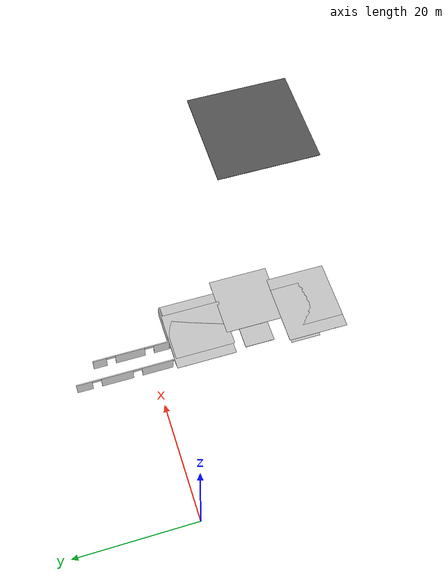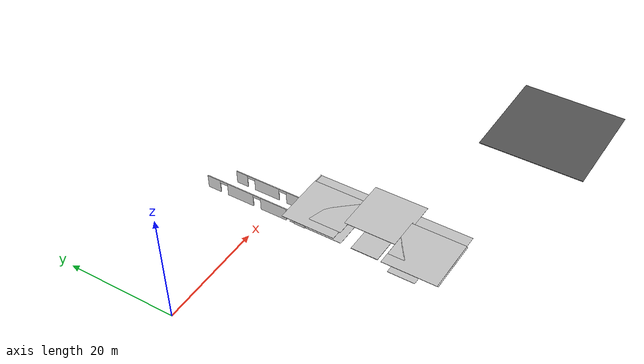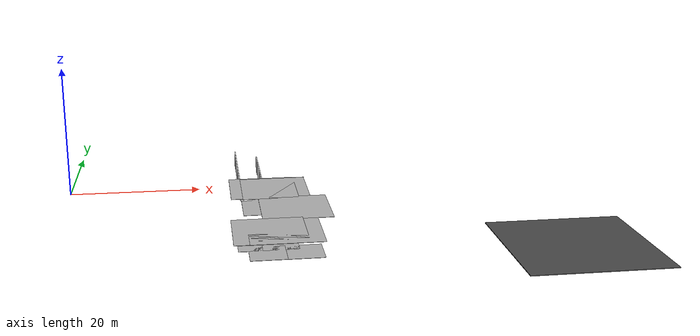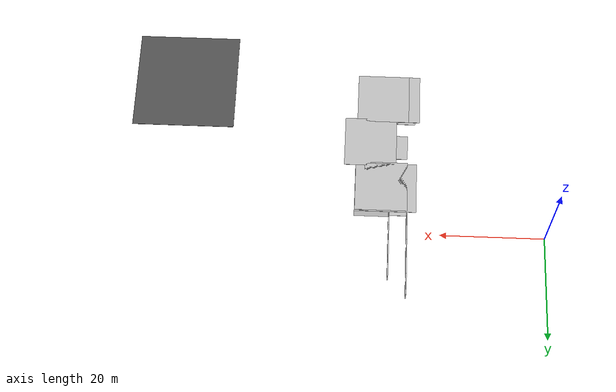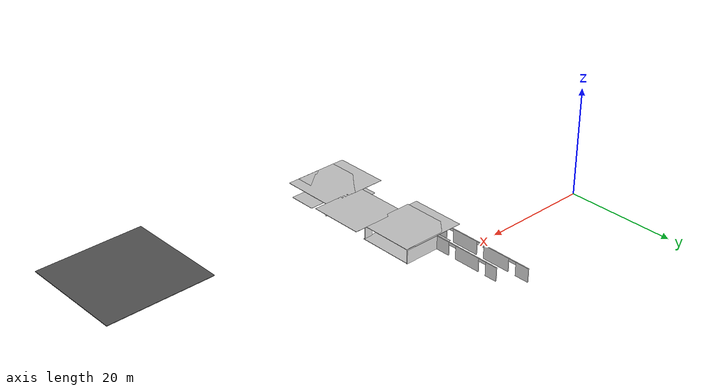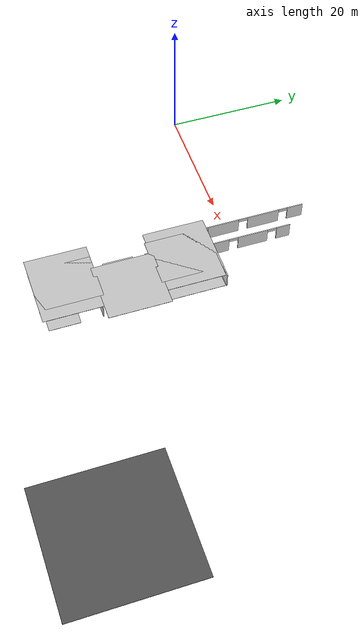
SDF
<sdf version="1.6">
 <world name="default">
  <model name="mainoffice">
   <pose>42.7555 15.4488 0 0 -0 0</pose>
   <link name="Wall_33">
    <pose>-11.4991 -33.925 0 0 -0 1.5708</pose>
    <visual name="Wall_33_Visual_0">
     <pose>-2.68364 0 1.25 0 -0 0</pose>
     <geometry><box><size>4.38272 0.15 2.5</size></box></geometry>
     <material>
      <script>
       <uri>model://office_env/materials/scripts</uri>
       <uri>model://office_env/materials/textures</uri>
       <name>wall</name>
      </script>
      <ambient>1 1 1 1</ambient>
     </material>
    </visual>
    <collision name="Wall_33_Collision_0">
     <geometry><box><size>4.38272 0.15 2.5</size></box></geometry>
     <pose>-2.68364 0 1.25 0 -0 0</pose>
    </collision>
    <visual name="Wall_33_Visual_1">
     <pose>2.94136 0 1.25 0 -0 0</pose>
     <geometry><box><size>3.86728 0.15 2.5</size></box></geometry>
     <material>
      <script>
       <uri>model://office_env/materials/scripts</uri>
       <uri>model://office_env/materials/textures</uri>
       <name>wall</name>
      </script>
      <ambient>1 1 1 1</ambient>
     </material>
    </visual>
    <collision name="Wall_33_Collision_1">
     <geometry><box><size>3.86728 0.15 2.5</size></box></geometry>
     <pose>2.94136 0 1.25 0 -0 0</pose>
    </collision>
    <visual name="Wall_33_Visual_2">
     <pose>0.257717 0 2.25 0 -0 0</pose>
     <geometry><box><size>1.5 0.15 0.5</size></box></geometry>
     <material>
      <script>
       <uri>model://office_env/materials/scripts</uri>
       <uri>model://office_env/materials/textures</uri>
       <name>wall</name>
      </script>
      <ambient>1 1 1 1</ambient>
     </material>
    </visual>
    <collision name="Wall_33_Collision_2">
     <geometry><box><size>1.5 0.15 0.5</size></box></geometry>
     <pose>0.257717 0 2.25 0 -0 0</pose>
    </collision>
   </link>
   <link name="Wall_53">
    <pose>-9.07409 -38.725 0 0 -0 0</pose>
    <visual name="Wall_53_Visual_0">
     <pose>-1.62716 0 1.25 0 -0 0</pose>
     <geometry><box><size>1.74568 0.15 2.5</size></box></geometry>
     <material>
      <script>
       <uri>model://office_env/materials/scripts</uri>
       <uri>model://office_env/materials/textures</uri>
       <name>wall</name>
      </script>
      <ambient>1 1 1 1</ambient>
     </material>
    </visual>
    <collision name="Wall_53_Collision_0">
     <geometry><box><size>1.74568 0.15 2.5</size></box></geometry>
     <pose>-1.62716 0 1.25 0 -0 0</pose>
    </collision>
    <visual name="Wall_53_Visual_1">
     <pose>1.62284 0 1.25 0 -0 0</pose>
     <geometry><box><size>1.75432 0.15 2.5</size></box></geometry>
     <material>
      <script>
       <uri>model://office_env/materials/scripts</uri>
       <uri>model://office_env/materials/textures</uri>
       <name>wall</name>
      </script>
      <ambient>1 1 1 1</ambient>
     </material>
    </visual>
    <collision name="Wall_53_Collision_1">
     <geometry><box><size>1.75432 0.15 2.5</size></box></geometry>
     <pose>1.62284 0 1.25 0 -0 0</pose>
    </collision>
    <visual name="Wall_53_Visual_2">
     <pose>-0.00432 0 2.25 0 -0 0</pose>
     <geometry><box><size>1.5 0.15 0.5</size></box></geometry>
     <material>
      <script>
       <uri>model://office_env/materials/scripts</uri>
       <uri>model://office_env/materials/textures</uri>
       <name>wall</name>
      </script>
      <ambient>1 1 1 1</ambient>
     </material>
    </visual>
    <collision name="Wall_53_Collision_2">
     <geometry><box><size>1.5 0.15 0.5</size></box></geometry>
     <pose>-0.00432 0 2.25 0 -0 0</pose>
    </collision>
   </link>
   <link name="Wall_56">
    <pose>-9.07409 -29.125 0 0 -0 0</pose>
    <visual name="Wall_56_Visual_0">
     <pose>-1.53426 0 1.25 0 -0 0</pose>
     <geometry><box><size>1.93148 0.15 2.5</size></box></geometry>
     <material>
      <script>
       <uri>model://office_env/materials/scripts</uri>
       <uri>model://office_env/materials/textures</uri>
       <name>wall</name>
      </script>
      <ambient>1 1 1 1</ambient>
     </material>
    </visual>
    <collision name="Wall_56_Collision_0">
     <geometry><box><size>1.93148 0.15 2.5</size></box></geometry>
     <pose>-1.53426 0 1.25 0 -0 0</pose>
    </collision>
    <visual name="Wall_56_Visual_1">
     <pose>1.71574 0 1.25 0 -0 0</pose>
     <geometry><box><size>1.56852 0.15 2.5</size></box></geometry>
     <material>
      <script>
       <uri>model://office_env/materials/scripts</uri>
       <uri>model://office_env/materials/textures</uri>
       <name>wall</name>
      </script>
      <ambient>1 1 1 1</ambient>
     </material>
    </visual>
    <collision name="Wall_56_Collision_1">
     <geometry><box><size>1.56852 0.15 2.5</size></box></geometry>
     <pose>1.71574 0 1.25 0 -0 0</pose>
    </collision>
    <visual name="Wall_56_Visual_2">
     <pose>0.181485 0 2.25 0 -0 0</pose>
     <geometry><box><size>1.5 0.15 0.5</size></box></geometry>
     <material>
      <script>
       <uri>model://office_env/materials/scripts</uri>
       <uri>model://office_env/materials/textures</uri>
       <name>wall</name>
      </script>
      <ambient>1 1 1 1</ambient>
     </material>
    </visual>
    <collision name="Wall_56_Collision_2">
     <geometry><box><size>1.5 0.15 0.5</size></box></geometry>
     <pose>0.181485 0 2.25 0 -0 0</pose>
    </collision>
   </link>
   <link name="Wall_59">
    <collision name="Wall_59_Collision">
     <geometry><box><size>7 0.15 2.5</size></box></geometry>
     <pose>0 0 1.25 0 -0 0</pose>
    </collision>
    <visual name="Wall_59_Visual">
     <pose>0 0 1.25 0 -0 0</pose>
     <geometry><box><size>7 0.15 2.5</size></box></geometry>
     <material>
      <script>
       <uri>model://office_env/materials/scripts</uri>
       <uri>model://office_env/materials/textures</uri>
       <name>wall</name>
      </script>
      <ambient>1 1 1 1</ambient>
     </material>
    </visual>
    <pose>-11.4991 -25.7 0 0 -0 1.5708</pose>
   </link>
   <link name="Wall_60">
    <pose>-13.7991 -22.275 0 0 -0 3.14159</pose>
    <visual name="Wall_60_Visual_0">
     <pose>-1.46064 0 1.25 0 -0 0</pose>
     <geometry><box><size>1.82871 0.15 2.5</size></box></geometry>
     <material>
      <script>
       <uri>model://office_env/materials/scripts</uri>
       <uri>model://office_env/materials/textures</uri>
       <name>wall</name>
      </script>
      <ambient>1 1 1 1</ambient>
     </material>
    </visual>
    <collision name="Wall_60_Collision_0">
     <geometry><box><size>1.82871 0.15 2.5</size></box></geometry>
     <pose>-1.46064 0 1.25 0 -0 0</pose>
    </collision>
    <visual name="Wall_60_Visual_1">
     <pose>1.66436 0 1.25 0 -0 0</pose>
     <geometry><box><size>1.42129 0.15 2.5</size></box></geometry>
     <material>
      <script>
       <uri>model://office_env/materials/scripts</uri>
       <uri>model://office_env/materials/textures</uri>
       <name>wall</name>
      </script>
      <ambient>1 1 1 1</ambient>
     </material>
    </visual>
    <collision name="Wall_60_Collision_1">
     <geometry><box><size>1.42129 0.15 2.5</size></box></geometry>
     <pose>1.66436 0 1.25 0 -0 0</pose>
    </collision>
    <visual name="Wall_60_Visual_2">
     <pose>0.203711 0 2.25 0 -0 0</pose>
     <geometry><box><size>1.5 0.15 0.5</size></box></geometry>
     <material>
      <script>
       <uri>model://office_env/materials/scripts</uri>
       <uri>model://office_env/materials/textures</uri>
       <name>wall</name>
      </script>
      <ambient>1 1 1 1</ambient>
     </material>
    </visual>
    <collision name="Wall_60_Collision_2">
     <geometry><box><size>1.5 0.15 0.5</size></box></geometry>
     <pose>0.203711 0 2.25 0 -0 0</pose>
    </collision>
   </link>
   <link name="Wall_61">
    <collision name="Wall_61_Collision">
     <geometry><box><size>0.5 0.15 2.5</size></box></geometry>
     <pose>0 0 1.25 0 -0 0</pose>
    </collision>
    <visual name="Wall_61_Visual">
     <pose>0 0 1.25 0 -0 0</pose>
     <geometry><box><size>0.5 0.15 2.5</size></box></geometry>
     <material>
      <script>
       <uri>model://office_env/materials/scripts</uri>
       <uri>model://office_env/materials/textures</uri>
       <name>wall</name>
      </script>
      <ambient>1 1 1 1</ambient>
     </material>
    </visual>
    <pose>-16.2741 -22.275 0 0 -0 3.14159</pose>
   </link>
   <link name="Wall_62">
    <pose>-16.4491 -12.475 0 0 -0 1.5708</pose>
    <visual name="Wall_62_Visual_0">
     <pose>-8.77826 0 1.25 0 -0 0</pose>
     <geometry><box><size>2.19348 0.15 2.5</size></box></geometry>
     <material>
      <script>
       <uri>model://office_env/materials/scripts</uri>
       <uri>model://office_env/materials/textures</uri>
       <name>wall</name>
      </script>
      <ambient>1 1 1 1</ambient>
     </material>
    </visual>
    <collision name="Wall_62_Collision_0">
     <geometry><box><size>2.19348 0.15 2.5</size></box></geometry>
     <pose>-8.77826 0 1.25 0 -0 0</pose>
    </collision>
    <visual name="Wall_62_Visual_1">
     <pose>-3.59393 0 1.25 0 -0 0</pose>
     <geometry><box><size>5.17517 0.15 2.5</size></box></geometry>
     <material>
      <script>
       <uri>model://office_env/materials/scripts</uri>
       <uri>model://office_env/materials/textures</uri>
       <name>wall</name>
      </script>
      <ambient>1 1 1 1</ambient>
     </material>
    </visual>
    <collision name="Wall_62_Collision_1">
     <geometry><box><size>5.17517 0.15 2.5</size></box></geometry>
     <pose>-3.59393 0 1.25 0 -0 0</pose>
    </collision>
    <visual name="Wall_62_Visual_2">
     <pose>3.1331 0 1.25 0 -0 0</pose>
     <geometry><box><size>5.27889 0.15 2.5</size></box></geometry>
     <material>
      <script>
       <uri>model://office_env/materials/scripts</uri>
       <uri>model://office_env/materials/textures</uri>
       <name>wall</name>
      </script>
      <ambient>1 1 1 1</ambient>
     </material>
    </visual>
    <collision name="Wall_62_Collision_2">
     <geometry><box><size>5.27889 0.15 2.5</size></box></geometry>
     <pose>3.1331 0 1.25 0 -0 0</pose>
    </collision>
    <visual name="Wall_62_Visual_3">
     <pose>8.57377 0 1.25 0 -0 0</pose>
     <geometry><box><size>2.60246 0.15 2.5</size></box></geometry>
     <material>
      <script>
       <uri>model://office_env/materials/scripts</uri>
       <uri>model://office_env/materials/textures</uri>
       <name>wall</name>
      </script>
      <ambient>1 1 1 1</ambient>
     </material>
    </visual>
    <collision name="Wall_62_Collision_3">
     <geometry><box><size>2.60246 0.15 2.5</size></box></geometry>
     <pose>8.57377 0 1.25 0 -0 0</pose>
    </collision>
    <visual name="Wall_62_Visual_4">
     <pose>-6.93152 0 2.25 0 -0 0</pose>
     <geometry><box><size>1.5 0.15 0.5</size></box></geometry>
     <material>
      <script>
       <uri>model://office_env/materials/scripts</uri>
       <uri>model://office_env/materials/textures</uri>
       <name>wall</name>
      </script>
      <ambient>1 1 1 1</ambient>
     </material>
    </visual>
    <collision name="Wall_62_Collision_4">
     <geometry><box><size>1.5 0.15 0.5</size></box></geometry>
     <pose>-6.93152 0 2.25 0 -0 0</pose>
    </collision>
    <visual name="Wall_62_Visual_5">
     <pose>-0.256349 0 2.25 0 -0 0</pose>
     <geometry><box><size>1.5 0.15 0.5</size></box></geometry>
     <material>
      <script>
       <uri>model://office_env/materials/scripts</uri>
       <uri>model://office_env/materials/textures</uri>
       <name>wall</name>
      </script>
      <ambient>1 1 1 1</ambient>
     </material>
    </visual>
    <collision name="Wall_62_Collision_5">
     <geometry><box><size>1.5 0.15 0.5</size></box></geometry>
     <pose>-0.256349 0 2.25 0 -0 0</pose>
    </collision>
    <visual name="Wall_62_Visual_6">
     <pose>6.52254 0 2.25 0 -0 0</pose>
     <geometry><box><size>1.5 0.15 0.5</size></box></geometry>
     <material>
      <script>
       <uri>model://office_env/materials/scripts</uri>
       <uri>model://office_env/materials/textures</uri>
       <name>wall</name>
      </script>
      <ambient>1 1 1 1</ambient>
     </material>
    </visual>
    <collision name="Wall_62_Collision_6">
     <geometry><box><size>1.5 0.15 0.5</size></box></geometry>
     <pose>6.52254 0 2.25 0 -0 0</pose>
    </collision>
   </link>
   <link name="Wall_81">
    <collision name="Wall_81_Collision">
     <geometry><box><size>6.75 0.15 2.5</size></box></geometry>
     <pose>0 0 1.25 0 -0 0</pose>
    </collision>
    <visual name="Wall_81_Visual">
     <pose>0 0 1.25 0 -0 0</pose>
     <geometry><box><size>6.75 0.15 2.5</size></box></geometry>
     <material>
      <script>
       <uri>model://office_env/materials/scripts</uri>
       <uri>model://office_env/materials/textures</uri>
       <name>wall</name>
      </script>
      <ambient>1 1 1 1</ambient>
     </material>
    </visual>
    <pose>-9.72161 -19.0475 0 0 -0 3.14159</pose>
   </link>
   <link name="Wall_82">
    <pose>-13.0216 -12.6225 0 0 -0 1.5708</pose>
    <visual name="Wall_82_Visual_0">
     <pose>-5.11472 0 1.25 0 -0 0</pose>
     <geometry><box><size>2.77056 0.15 2.5</size></box></geometry>
     <material>
      <script>
       <uri>model://office_env/materials/scripts</uri>
       <uri>model://office_env/materials/textures</uri>
       <name>wall</name>
      </script>
      <ambient>1 1 1 1</ambient>
     </material>
    </visual>
    <collision name="Wall_82_Collision_0">
     <geometry><box><size>2.77056 0.15 2.5</size></box></geometry>
     <pose>-5.11472 0 1.25 0 -0 0</pose>
    </collision>
    <visual name="Wall_82_Visual_1">
     <pose>0.250774 0 1.25 0 -0 0</pose>
     <geometry><box><size>4.96043 0.15 2.5</size></box></geometry>
     <material>
      <script>
       <uri>model://office_env/materials/scripts</uri>
       <uri>model://office_env/materials/textures</uri>
       <name>wall</name>
      </script>
      <ambient>1 1 1 1</ambient>
     </material>
    </visual>
    <collision name="Wall_82_Collision_1">
     <geometry><box><size>4.96043 0.15 2.5</size></box></geometry>
     <pose>0.250774 0 1.25 0 -0 0</pose>
    </collision>
    <visual name="Wall_82_Visual_2">
     <pose>5.36549 0 1.25 0 -0 0</pose>
     <geometry><box><size>2.26901 0.15 2.5</size></box></geometry>
     <material>
      <script>
       <uri>model://office_env/materials/scripts</uri>
       <uri>model://office_env/materials/textures</uri>
       <name>wall</name>
      </script>
      <ambient>1 1 1 1</ambient>
     </material>
    </visual>
    <collision name="Wall_82_Collision_2">
     <geometry><box><size>2.26901 0.15 2.5</size></box></geometry>
     <pose>5.36549 0 1.25 0 -0 0</pose>
    </collision>
    <visual name="Wall_82_Visual_3">
     <pose>-2.97944 0 2.25 0 -0 0</pose>
     <geometry><box><size>1.5 0.15 0.5</size></box></geometry>
     <material>
      <script>
       <uri>model://office_env/materials/scripts</uri>
       <uri>model://office_env/materials/textures</uri>
       <name>wall</name>
      </script>
      <ambient>1 1 1 1</ambient>
     </material>
    </visual>
    <collision name="Wall_82_Collision_3">
     <geometry><box><size>1.5 0.15 0.5</size></box></geometry>
     <pose>-2.97944 0 2.25 0 -0 0</pose>
    </collision>
    <visual name="Wall_82_Visual_4">
     <pose>3.48099 0 2.25 0 -0 0</pose>
     <geometry><box><size>1.5 0.15 0.5</size></box></geometry>
     <material>
      <script>
       <uri>model://office_env/materials/scripts</uri>
       <uri>model://office_env/materials/textures</uri>
       <name>wall</name>
      </script>
      <ambient>1 1 1 1</ambient>
     </material>
    </visual>
    <collision name="Wall_82_Collision_4">
     <geometry><box><size>1.5 0.15 0.5</size></box></geometry>
     <pose>3.48099 0 2.25 0 -0 0</pose>
    </collision>
   </link>
   <static>1</static>
  </model>
  <model name="asphalt_plane">
   <static>1</static>
   <link name="link">
    <collision name="collision"><geometry><box><size>20 20 0.1</size></box></geometry></collision>
    <visual name="visual">
     <cast_shadows>0</cast_shadows>
     <geometry><box><size>20 20 0.1</size></box></geometry>
     <material>
      <script>
       <uri>model://asphalt_plane/materials/scripts</uri>
       <uri>model://asphalt_plane/materials/textures</uri>
       <name>vrc/asphalt</name>
      </script>
     </material>
    </visual>
   </link>
   <pose>70.7475 -31.5972 0 0 -0 0</pose>
  </model>
  <model name="Floor_39">
   <link name="main">
    <pose>0 0 0.01 0 -0 0</pose>
    <collision name="main_Collision"><geometry><box><size>10 10 0.05</size></box></geometry></collision>
    <visual name="main_Visual">
     <geometry><box><size>10 10 0.05</size></box></geometry>
     <material>
      <script>
       <uri>model://Floor_small/materials/scripts</uri>
       <uri>model://Floor_small/materials/textures</uri>
       <name>floor</name>
      </script>
     </material>
    </visual>
   </link>
   <static>1</static>
   <pose>31.3575 -8.76884 0 0 -0 0</pose>
  </model>
  <model name="Floor_42">
   <link name="main">
    <pose>0 0 0.01 0 -0 0</pose>
    <collision name="main_Collision"><geometry><box><size>5 5 0.05</size></box></geometry></collision>
    <visual name="main_Visual">
     <geometry><box><size>5 5 0.05</size></box></geometry>
     <material>
      <script>
       <uri>model://Floor_verysmall/materials/scripts</uri>
       <uri>model://Floor_verysmall/materials/textures</uri>
       <name>floor</name>
      </script>
     </material>
    </visual>
   </link>
   <static>1</static>
   <pose>27.3802 -25.8391 0 0 -0 0</pose>
  </model>
  <model name="Floor_44">
   <link name="main">
    <pose>0 0 0.01 0 -0 0</pose>
    <collision name="main_Collision"><geometry><box><size>5 5 0.05</size></box></geometry></collision>
    <visual name="main_Visual">
     <geometry><box><size>5 5 0.05</size></box></geometry>
     <material>
      <script>
       <uri>model://Floor_verysmall/materials/scripts</uri>
       <uri>model://Floor_verysmall/materials/textures</uri>
       <name>floor</name>
      </script>
     </material>
    </visual>
   </link>
   <static>1</static>
   <pose>30.6656 -25.8356 0 0 -0 0</pose>
  </model>
  <model name="Floor_45">
   <link name="main">
    <pose>0 0 0.01 0 -0 0</pose>
    <collision name="main_Collision"><geometry><box><size>5 5 0.05</size></box></geometry></collision>
    <visual name="main_Visual">
     <geometry><box><size>5 5 0.05</size></box></geometry>
     <material>
      <script>
       <uri>model://Floor_verysmall/materials/scripts</uri>
       <uri>model://Floor_verysmall/materials/textures</uri>
       <name>floor</name>
      </script>
     </material>
    </visual>
   </link>
   <static>1</static>
   <pose>33.7308 -29.3403 0 0 -0 0</pose>
  </model>
  <model name="Floor_46">
   <link name="main">
    <pose>0 0 0.01 0 -0 0</pose>
    <collision name="main_Collision"><geometry><box><size>5 5 0.05</size></box></geometry></collision>
    <visual name="main_Visual">
     <geometry><box><size>5 5 0.05</size></box></geometry>
     <material>
      <script>
       <uri>model://Floor_verysmall/materials/scripts</uri>
       <uri>model://Floor_verysmall/materials/textures</uri>
       <name>floor</name>
      </script>
     </material>
    </visual>
   </link>
   <static>1</static>
   <pose>28.7442 -29.3242 0 0 -0 0</pose>
  </model>
  <model name="outdoor_plane_25">
   <static>1</static>
   <link name="link">
    <collision name="collision"><geometry><box><size>5 5 0.1</size></box></geometry></collision>
    <visual name="visual">
     <cast_shadows>0</cast_shadows>
     <geometry><box><size>5 5 0.1</size></box></geometry>
     <material>
      <script>
       <uri>model://outdoor_planesmall/materials/scripts</uri>
       <uri>model://outdoor_planesmall/materials/textures</uri>
       <name>outdss/Image</name>
      </script>
     </material>
    </visual>
   </link>
   <pose>28.798 -18.2335 0 0 -0 0</pose>
  </model>
  <model name="Floor_3_clone_10_clone_8">
   <link name="main">
    <pose>0 0 0.01 0 -0 0</pose>
    <collision name="main_Collision"><geometry><box><size>10 10 0.05</size></box></geometry></collision>
    <visual name="main_Visual">
     <geometry><box><size>10 10 0.05</size></box></geometry>
     <material>
      <script>
       <uri>model://Floor_small/materials/scripts</uri>
       <uri>model://Floor_small/materials/textures</uri>
       <name>floor</name>
      </script>
     </material>
    </visual>
   </link>
   <static>1</static>
   <pose>29.5975 -8.51645 2.5 0 -0 0</pose>
  </model>
  <model name="Floor_3_clone_16">
   <link name="main">
    <pose>0 0 0.01 0 -0 0</pose>
    <collision name="main_Collision"><geometry><box><size>10 10 0.05</size></box></geometry></collision>
    <visual name="main_Visual">
     <geometry><box><size>10 10 0.05</size></box></geometry>
     <material>
      <script>
       <uri>model://Floor_small/materials/scripts</uri>
       <uri>model://Floor_small/materials/textures</uri>
       <name>floor</name>
      </script>
     </material>
    </visual>
   </link>
   <static>1</static>
   <pose>31.3111 -8.77748 2.5 0 -0 0</pose>
  </model>
  <model name="Floor_3_clone_19">
   <link name="main">
    <pose>0 0 0.01 0 -0 0</pose>
    <collision name="main_Collision"><geometry><box><size>10 10 0.05</size></box></geometry></collision>
    <visual name="main_Visual">
     <geometry><box><size>10 10 0.05</size></box></geometry>
     <material>
      <script>
       <uri>model://Floor_small/materials/scripts</uri>
       <uri>model://Floor_small/materials/textures</uri>
       <name>floor</name>
      </script>
     </material>
    </visual>
   </link>
   <static>1</static>
   <pose>29.1439 -27.5658 2.5 0 -0 0</pose>
  </model>
  <model name="Floor_3_clone_20">
   <link name="main">
    <pose>0 0 0.01 0 -0 0</pose>
    <collision name="main_Collision"><geometry><box><size>10 10 0.05</size></box></geometry></collision>
    <visual name="main_Visual">
     <geometry><box><size>10 10 0.05</size></box></geometry>
     <material>
      <script>
       <uri>model://Floor_small/materials/scripts</uri>
       <uri>model://Floor_small/materials/textures</uri>
       <name>floor</name>
      </script>
     </material>
    </visual>
   </link>
   <static>1</static>
   <pose>31.2407 -27.588 2.5 0 -0 0</pose>
  </model>
  <model name="Floor_3_clone_21">
   <link name="main">
    <pose>0 0 0.01 0 -0 0</pose>
    <collision name="main_Collision"><geometry><box><size>10 10 0.05</size></box></geometry></collision>
    <visual name="main_Visual">
     <geometry><box><size>10 10 0.05</size></box></geometry>
     <material>
      <script>
       <uri>model://Floor_small/materials/scripts</uri>
       <uri>model://Floor_small/materials/textures</uri>
       <name>floor</name>
      </script>
     </material>
    </visual>
   </link>
   <static>1</static>
   <pose>33.5525 -18.1126 2.5 0 -0 0</pose>
  </model>
 </world>
</sdf>
